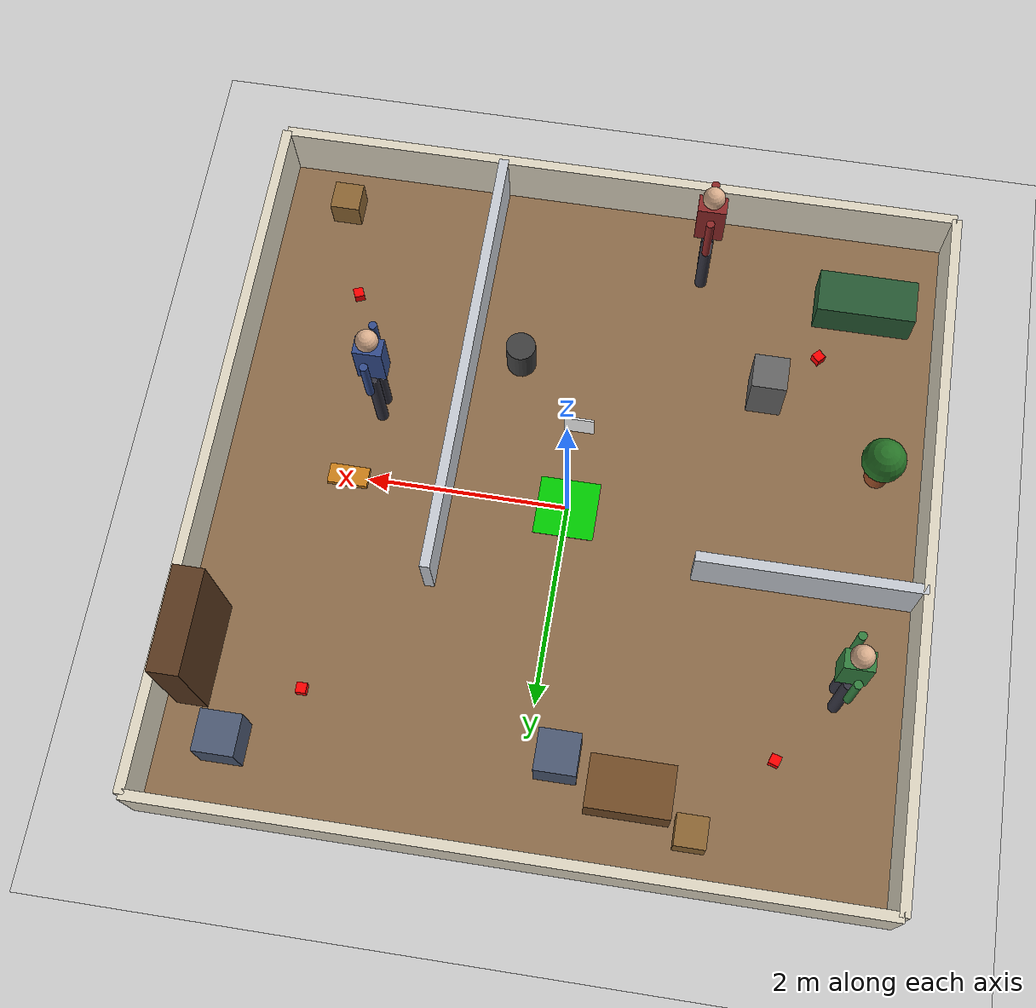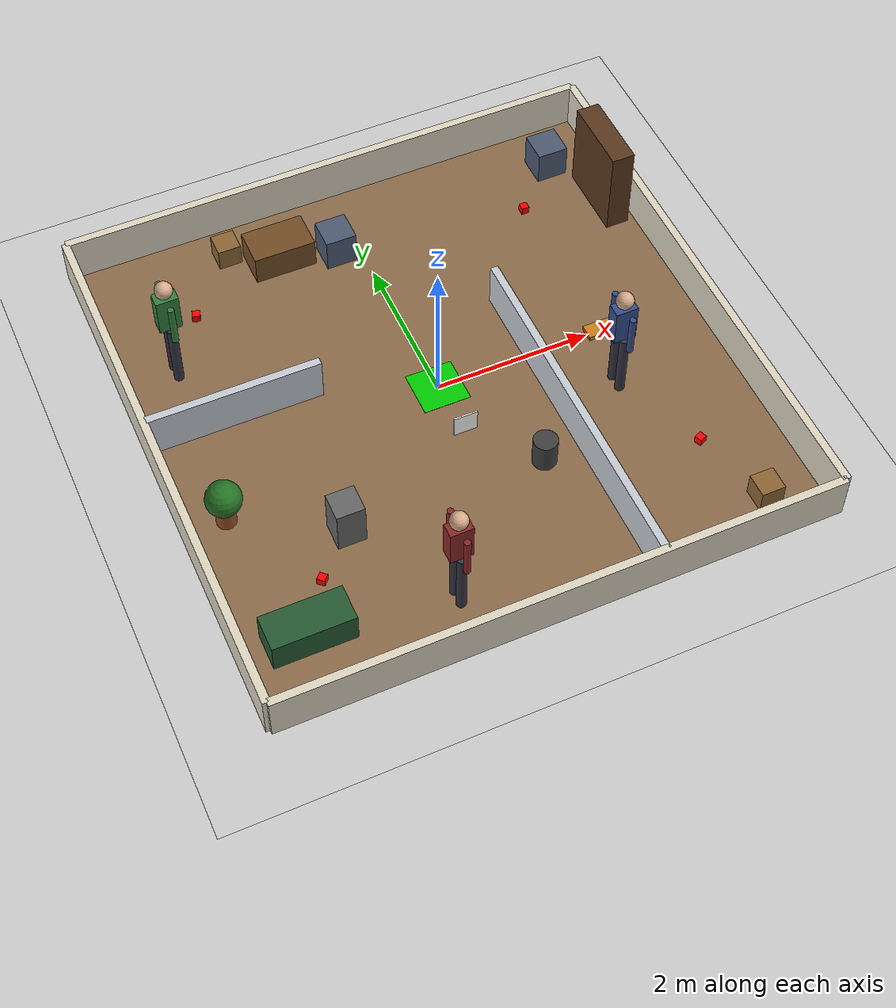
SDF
<?xml version="1.0" ?>
<sdf version="1.6">
  <world name="botzilla_world">
    <plugin filename="gz-sim-physics-system" name="gz::sim::systems::Physics">
    </plugin>
    <plugin filename="gz-sim-user-commands-system" name="gz::sim::systems::UserCommands">
    </plugin>
    <plugin filename="gz-sim-scene-broadcaster-system" name="gz::sim::systems::SceneBroadcaster">
    </plugin>
    <plugin filename="gz-sim-sensors-system" name="gz::sim::systems::Sensors">
      <render_engine>ogre2</render_engine>
    </plugin>

    <!-- Global light source using Fuel URI -->
    <include>
      <uri>https://fuel.gazebosim.org/1.0/OpenRobotics/models/Sun</uri>
    </include>
    <!-- Ground plane using Fuel URI -->
    <include>
      <uri>https://fuel.gazebosim.org/1.0/OpenRobotics/models/Ground Plane</uri>
    </include>

    <!-- Warm wood-tone floor finish overlay (visual only; Ground Plane above keeps the physics collision) -->
    <model name="floor_finish">
      <static>true</static>
      <pose>0 0 0.0008 0 0 0</pose>
      <link name="link">
        <visual name="visual">
          <geometry>
            <box>
              <size>7.0 7.0 0.001</size>
            </box>
          </geometry>
          <material>
            <ambient>0.55 0.42 0.29 1</ambient>
            <diffuse>0.55 0.42 0.29 1</diffuse>
          </material>
        </visual>
      </link>
    </model>

    <!-- Home / Drop-Off Zone at Origin (0.0, 0.0)                 -->
    <model name="drop_off_zone">
      <static>true</static>
      <pose>0.0 0.0 0.0025 0 0 0</pose>
      <link name="link">
        <visual name="visual">
          <geometry>
            <box>
              <size>0.6 0.6 0.005</size>
            </box>
          </geometry>
          <material>
            <ambient>0 0.8 0 1</ambient> <!-- Green home zone -->
          </material>
        </visual>
      </link>
    </model>

    <!-- AprilTag / Marker Panel behind home zone -->
    <model name="drop_off_wall_panel">
      <static>true</static>
      <pose>0.0 -0.8 0.25 0 0 0</pose>
      <link name="link">
        <visual name="visual">
          <geometry>
            <box>
              <size>0.3 0.02 0.3</size>
            </box>
          </geometry>
          <material>
            <ambient>1 1 1 1</ambient> <!-- White panel reference -->
          </material>
        </visual>
      </link>
    </model>

    <!-- N Collectible Target Cubes (N = 4)                        -->
    <!-- Scattered across different rooms to test frontier search  -->

    <!-- Cube 1: East Room (Upper) -->
    <model name="cube_1">
      <pose>2.2 2.2 0.05 0 0 0</pose>
      <link name="link">
        <inertial>
          <mass>0.05</mass>
          <inertia>
            <ixx>0.00008</ixx>
            <ixy>0</ixy>
            <ixz>0</ixz>
            <iyy>0.00008</iyy>
            <iyz>0</iyz>
            <izz>0.00008</izz>
          </inertia>
        </inertial>
        <collision name="collision">
          <geometry>
            <box>
              <size>0.1 0.1 0.1</size>
            </box>
          </geometry>
        </collision>
        <visual name="visual">
          <geometry>
            <box>
              <size>0.1 0.1 0.1</size>
            </box>
          </geometry>
          <material>
            <ambient>1 0 0 1</ambient> <!-- Red cube -->
            <diffuse>1 0 0 1</diffuse>
          </material>
        </visual>
      </link>
    </model>

    <!-- Cube 2: East Room (Lower behind central partition) -->
    <model name="cube_2">
      <pose>2.5 -2.0 0.05 0 0 0.4</pose>
      <link name="link">
        <inertial>
          <mass>0.05</mass>
          <inertia>
            <ixx>0.00008</ixx>
            <ixy>0</ixy>
            <ixz>0</ixz>
            <iyy>0.00008</iyy>
            <iyz>0</iyz>
            <izz>0.00008</izz>
          </inertia>
        </inertial>
        <collision name="collision">
          <geometry>
            <box>
              <size>0.1 0.1 0.1</size>
            </box>
          </geometry>
        </collision>
        <visual name="visual">
          <geometry>
            <box>
              <size>0.1 0.1 0.1</size>
            </box>
          </geometry>
          <material>
            <ambient>1 0 0 1</ambient>
            <diffuse>1 0 0 1</diffuse>
          </material>
        </visual>
      </link>
    </model>

    <!-- Cube 3: Northwest Room -->
    <model name="cube_3">
      <pose>-2.3 2.2 0.05 0 0 -0.3</pose>
      <link name="link">
        <inertial>
          <mass>0.05</mass>
          <inertia>
            <ixx>0.00008</ixx>
            <ixy>0</ixy>
            <ixz>0</ixz>
            <iyy>0.00008</iyy>
            <iyz>0</iyz>
            <izz>0.00008</izz>
          </inertia>
        </inertial>
        <collision name="collision">
          <geometry>
            <box>
              <size>0.1 0.1 0.1</size>
            </box>
          </geometry>
        </collision>
        <visual name="visual">
          <geometry>
            <box>
              <size>0.1 0.1 0.1</size>
            </box>
          </geometry>
          <material>
            <ambient>1 0 0 1</ambient>
            <diffuse>1 0 0 1</diffuse>
          </material>
        </visual>
      </link>
    </model>

    <!-- Cube 4: Southwest Room -->
    <model name="cube_4">
      <pose>-2.3 -2.0 0.05 0 0 0.8</pose>
      <link name="link">
        <inertial>
          <mass>0.05</mass>
          <inertia>
            <ixx>0.00008</ixx>
            <ixy>0</ixy>
            <ixz>0</ixz>
            <iyy>0.00008</iyy>
            <iyz>0</iyz>
            <izz>0.00008</izz>
          </inertia>
        </inertial>
        <collision name="collision">
          <geometry>
            <box>
              <size>0.1 0.1 0.1</size>
            </box>
          </geometry>
        </collision>
        <visual name="visual">
          <geometry>
            <box>
              <size>0.1 0.1 0.1</size>
            </box>
          </geometry>
          <material>
            <ambient>1 0 0 1</ambient>
            <diffuse>1 0 0 1</diffuse>
          </material>
        </visual>
      </link>
    </model>

    <!-- Multi-Height Obstacles (Testing Sensor Fusion)            -->

    <!-- Normal 2D LiDAR Pillar (Detected by LiDAR /scan at z=12cm) -->
    <model name="pillar_1">
      <static>true</static>
      <pose>-1.8 -1.5 0.3 0 0 0</pose>
      <link name="link">
        <collision name="collision">
          <geometry>
            <box>
              <size>0.35 0.35 0.6</size>
            </box>
          </geometry>
        </collision>
        <visual name="visual">
          <geometry>
            <box>
              <size>0.35 0.35 0.6</size>
            </box>
          </geometry>
          <material>
            <ambient>0.4 0.4 0.4 1</ambient>
          </material>
        </visual>
      </link>
    </model>

    <!-- Low Floor Barrier (Below LiDAR plane z=12cm; caught by Kinect 3D VoxelLayer) -->
    <model name="low_barrier_1">
      <static>true</static>
      <pose>2.2 0.0 0.03 0 0 0</pose>
      <link name="link">
        <collision name="collision">
          <geometry>
            <box>
              <size>0.4 0.2 0.06</size>
            </box>
          </geometry>
        </collision>
        <visual name="visual">
          <geometry>
            <box>
              <size>0.4 0.2 0.06</size>
            </box>
          </geometry>
          <material>
            <ambient>0.8 0.5 0.1 1</ambient> <!-- Orange low obstacle -->
          </material>
        </visual>
      </link>
    </model>

    <!-- Interior Partitions (Creating Occluded Rooms & Doorways)  -->

    <!-- Central Partition Wall (x = 1.2, from y = -3.5 to y = 1.0) -->
    <model name="partition_central">
      <static>true</static>
      <pose>1.2 -1.25 0.3 0 0 0</pose>
      <link name="link">
        <collision name="collision">
          <geometry>
            <box>
              <size>0.1 4.5 0.6</size>
            </box>
          </geometry>
        </collision>
        <visual name="visual">
          <geometry>
            <box>
              <size>0.1 4.5 0.6</size>
            </box>
          </geometry>
          <material>
            <ambient>0.78 0.80 0.83 1</ambient>
          </material>
        </visual>
      </link>
    </model>

    <!-- West Partition Wall (y = 0.5, from x = -3.5 to x = -1.3) -->
    <model name="partition_room_west">
      <static>true</static>
      <pose>-2.4 0.5 0.3 0 0 0</pose>
      <link name="link">
        <collision name="collision">
          <geometry>
            <box>
              <size>2.2 0.1 0.6</size>
            </box>
          </geometry>
        </collision>
        <visual name="visual">
          <geometry>
            <box>
              <size>2.2 0.1 0.6</size>
            </box>
          </geometry>
          <material>
            <ambient>0.78 0.80 0.83 1</ambient>
          </material>
        </visual>
      </link>
    </model>

    <!-- Room Furniture (visual/collision clutter for realism)     -->

    <!-- Table (north corridor, between the west and east rooms) -->
    <model name="table_1">
      <static>true</static>
      <pose>-1.0 2.7 0.2 0 0 0</pose>
      <link name="link">
        <collision name="collision">
          <geometry>
            <box>
              <size>0.8 0.5 0.4</size>
            </box>
          </geometry>
        </collision>
        <visual name="visual">
          <geometry>
            <box>
              <size>0.8 0.5 0.4</size>
            </box>
          </geometry>
          <material>
            <ambient>0.45 0.3 0.15 1</ambient>
            <diffuse>0.45 0.3 0.15 1</diffuse>
          </material>
        </visual>
      </link>
    </model>

    <!-- Bookshelf against the east wall (east room) -->
    <model name="shelf_1">
      <static>true</static>
      <pose>3.2 2.0 0.6 0 0 0</pose>
      <link name="link">
        <collision name="collision">
          <geometry>
            <box>
              <size>0.3 1.0 1.2</size>
            </box>
          </geometry>
        </collision>
        <visual name="visual">
          <geometry>
            <box>
              <size>0.3 1.0 1.2</size>
            </box>
          </geometry>
          <material>
            <ambient>0.35 0.22 0.12 1</ambient>
            <diffuse>0.35 0.22 0.12 1</diffuse>
          </material>
        </visual>
      </link>
    </model>

    <!-- Static Human Figures (simplified torso+head mannequins)   -->
    <!-- Sensor-fusion test targets, one per room                  -->

    <!-- Human 1: East room -->
    <model name="human_1">
      <static>true</static>
      <pose>2.0 -0.8 0 0 0 0</pose>
      <link name="link">
        <collision name="leg_left_collision">
          <pose>0 0.09 0.45 0 0 0</pose>
          <geometry><cylinder><radius>0.06</radius><length>0.9</length></cylinder></geometry>
        </collision>
        <visual name="leg_left_visual">
          <pose>0 0.09 0.45 0 0 0</pose>
          <geometry><cylinder><radius>0.06</radius><length>0.9</length></cylinder></geometry>
          <material><ambient>0.2 0.2 0.25 1</ambient><diffuse>0.2 0.2 0.25 1</diffuse></material>
        </visual>
        <collision name="leg_right_collision">
          <pose>0 -0.09 0.45 0 0 0</pose>
          <geometry><cylinder><radius>0.06</radius><length>0.9</length></cylinder></geometry>
        </collision>
        <visual name="leg_right_visual">
          <pose>0 -0.09 0.45 0 0 0</pose>
          <geometry><cylinder><radius>0.06</radius><length>0.9</length></cylinder></geometry>
          <material><ambient>0.2 0.2 0.25 1</ambient><diffuse>0.2 0.2 0.25 1</diffuse></material>
        </visual>
        <collision name="torso_collision">
          <pose>0 0 1.15 0 0 0</pose>
          <geometry><box><size>0.28 0.18 0.5</size></box></geometry>
        </collision>
        <visual name="torso_visual">
          <pose>0 0 1.15 0 0 0</pose>
          <geometry><box><size>0.28 0.18 0.5</size></box></geometry>
          <material><ambient>0.2 0.3 0.55 1</ambient><diffuse>0.2 0.3 0.55 1</diffuse></material>
        </visual>
        <collision name="arm_left_collision">
          <pose>0 0.22 1.125 0 0 0</pose>
          <geometry><cylinder><radius>0.04</radius><length>0.55</length></cylinder></geometry>
        </collision>
        <visual name="arm_left_visual">
          <pose>0 0.22 1.125 0 0 0</pose>
          <geometry><cylinder><radius>0.04</radius><length>0.55</length></cylinder></geometry>
          <material><ambient>0.2 0.3 0.55 1</ambient><diffuse>0.2 0.3 0.55 1</diffuse></material>
        </visual>
        <collision name="arm_right_collision">
          <pose>0 -0.22 1.125 0 0 0</pose>
          <geometry><cylinder><radius>0.04</radius><length>0.55</length></cylinder></geometry>
        </collision>
        <visual name="arm_right_visual">
          <pose>0 -0.22 1.125 0 0 0</pose>
          <geometry><cylinder><radius>0.04</radius><length>0.55</length></cylinder></geometry>
          <material><ambient>0.2 0.3 0.55 1</ambient><diffuse>0.2 0.3 0.55 1</diffuse></material>
        </visual>
        <collision name="head_collision">
          <pose>0 0 1.51 0 0 0</pose>
          <geometry><sphere><radius>0.11</radius></sphere></geometry>
        </collision>
        <visual name="head_visual">
          <pose>0 0 1.51 0 0 0</pose>
          <geometry><sphere><radius>0.11</radius></sphere></geometry>
          <material><ambient>0.85 0.68 0.55 1</ambient><diffuse>0.85 0.68 0.55 1</diffuse></material>
        </visual>
      </link>
    </model>

    <!-- Human 2: South-center area -->
    <model name="human_2">
      <static>true</static>
      <pose>-1.0 -2.8 0 0 0 0</pose>
      <link name="link">
        <collision name="leg_left_collision">
          <pose>0 0.09 0.45 0 0 0</pose>
          <geometry><cylinder><radius>0.06</radius><length>0.9</length></cylinder></geometry>
        </collision>
        <visual name="leg_left_visual">
          <pose>0 0.09 0.45 0 0 0</pose>
          <geometry><cylinder><radius>0.06</radius><length>0.9</length></cylinder></geometry>
          <material><ambient>0.2 0.2 0.25 1</ambient><diffuse>0.2 0.2 0.25 1</diffuse></material>
        </visual>
        <collision name="leg_right_collision">
          <pose>0 -0.09 0.45 0 0 0</pose>
          <geometry><cylinder><radius>0.06</radius><length>0.9</length></cylinder></geometry>
        </collision>
        <visual name="leg_right_visual">
          <pose>0 -0.09 0.45 0 0 0</pose>
          <geometry><cylinder><radius>0.06</radius><length>0.9</length></cylinder></geometry>
          <material><ambient>0.2 0.2 0.25 1</ambient><diffuse>0.2 0.2 0.25 1</diffuse></material>
        </visual>
        <collision name="torso_collision">
          <pose>0 0 1.15 0 0 0</pose>
          <geometry><box><size>0.28 0.18 0.5</size></box></geometry>
        </collision>
        <visual name="torso_visual">
          <pose>0 0 1.15 0 0 0</pose>
          <geometry><box><size>0.28 0.18 0.5</size></box></geometry>
          <material><ambient>0.55 0.15 0.15 1</ambient><diffuse>0.55 0.15 0.15 1</diffuse></material>
        </visual>
        <collision name="arm_left_collision">
          <pose>0 0.22 1.125 0 0 0</pose>
          <geometry><cylinder><radius>0.04</radius><length>0.55</length></cylinder></geometry>
        </collision>
        <visual name="arm_left_visual">
          <pose>0 0.22 1.125 0 0 0</pose>
          <geometry><cylinder><radius>0.04</radius><length>0.55</length></cylinder></geometry>
          <material><ambient>0.55 0.15 0.15 1</ambient><diffuse>0.55 0.15 0.15 1</diffuse></material>
        </visual>
        <collision name="arm_right_collision">
          <pose>0 -0.22 1.125 0 0 0</pose>
          <geometry><cylinder><radius>0.04</radius><length>0.55</length></cylinder></geometry>
        </collision>
        <visual name="arm_right_visual">
          <pose>0 -0.22 1.125 0 0 0</pose>
          <geometry><cylinder><radius>0.04</radius><length>0.55</length></cylinder></geometry>
          <material><ambient>0.55 0.15 0.15 1</ambient><diffuse>0.55 0.15 0.15 1</diffuse></material>
        </visual>
        <collision name="head_collision">
          <pose>0 0 1.51 0 0 0</pose>
          <geometry><sphere><radius>0.11</radius></sphere></geometry>
        </collision>
        <visual name="head_visual">
          <pose>0 0 1.51 0 0 0</pose>
          <geometry><sphere><radius>0.11</radius></sphere></geometry>
          <material><ambient>0.85 0.68 0.55 1</ambient><diffuse>0.85 0.68 0.55 1</diffuse></material>
        </visual>
      </link>
    </model>

    <!-- Human 3: Northwest room -->
    <model name="human_3">
      <static>true</static>
      <pose>-2.8 1.5 0 0 0 0</pose>
      <link name="link">
        <collision name="leg_left_collision">
          <pose>0 0.09 0.45 0 0 0</pose>
          <geometry><cylinder><radius>0.06</radius><length>0.9</length></cylinder></geometry>
        </collision>
        <visual name="leg_left_visual">
          <pose>0 0.09 0.45 0 0 0</pose>
          <geometry><cylinder><radius>0.06</radius><length>0.9</length></cylinder></geometry>
          <material><ambient>0.2 0.2 0.25 1</ambient><diffuse>0.2 0.2 0.25 1</diffuse></material>
        </visual>
        <collision name="leg_right_collision">
          <pose>0 -0.09 0.45 0 0 0</pose>
          <geometry><cylinder><radius>0.06</radius><length>0.9</length></cylinder></geometry>
        </collision>
        <visual name="leg_right_visual">
          <pose>0 -0.09 0.45 0 0 0</pose>
          <geometry><cylinder><radius>0.06</radius><length>0.9</length></cylinder></geometry>
          <material><ambient>0.2 0.2 0.25 1</ambient><diffuse>0.2 0.2 0.25 1</diffuse></material>
        </visual>
        <collision name="torso_collision">
          <pose>0 0 1.15 0 0 0</pose>
          <geometry><box><size>0.28 0.18 0.5</size></box></geometry>
        </collision>
        <visual name="torso_visual">
          <pose>0 0 1.15 0 0 0</pose>
          <geometry><box><size>0.28 0.18 0.5</size></box></geometry>
          <material><ambient>0.2 0.5 0.25 1</ambient><diffuse>0.2 0.5 0.25 1</diffuse></material>
        </visual>
        <collision name="arm_left_collision">
          <pose>0 0.22 1.125 0 0 0</pose>
          <geometry><cylinder><radius>0.04</radius><length>0.55</length></cylinder></geometry>
        </collision>
        <visual name="arm_left_visual">
          <pose>0 0.22 1.125 0 0 0</pose>
          <geometry><cylinder><radius>0.04</radius><length>0.55</length></cylinder></geometry>
          <material><ambient>0.2 0.5 0.25 1</ambient><diffuse>0.2 0.5 0.25 1</diffuse></material>
        </visual>
        <collision name="arm_right_collision">
          <pose>0 -0.22 1.125 0 0 0</pose>
          <geometry><cylinder><radius>0.04</radius><length>0.55</length></cylinder></geometry>
        </collision>
        <visual name="arm_right_visual">
          <pose>0 -0.22 1.125 0 0 0</pose>
          <geometry><cylinder><radius>0.04</radius><length>0.55</length></cylinder></geometry>
          <material><ambient>0.2 0.5 0.25 1</ambient><diffuse>0.2 0.5 0.25 1</diffuse></material>
        </visual>
        <collision name="head_collision">
          <pose>0 0 1.51 0 0 0</pose>
          <geometry><sphere><radius>0.11</radius></sphere></geometry>
        </collision>
        <visual name="head_visual">
          <pose>0 0 1.51 0 0 0</pose>
          <geometry><sphere><radius>0.11</radius></sphere></geometry>
          <material><ambient>0.85 0.68 0.55 1</ambient><diffuse>0.85 0.68 0.55 1</diffuse></material>
        </visual>
      </link>
    </model>

    <!-- Additional Indoor Clutter (chairs, sofa, plant, bin, crates) -->

    <!-- Chair near shelf (east room) -->
    <model name="chair_1">
      <static>true</static>
      <pose>2.8 2.8 0.225 0 0 0</pose>
      <link name="link">
        <collision name="collision">
          <geometry><box><size>0.4 0.4 0.45</size></box></geometry>
        </collision>
        <visual name="visual">
          <geometry><box><size>0.4 0.4 0.45</size></box></geometry>
          <material><ambient>0.3 0.35 0.45 1</ambient><diffuse>0.3 0.35 0.45 1</diffuse></material>
        </visual>
      </link>
    </model>

    <!-- Chair near table (center corridor) -->
    <model name="chair_2">
      <static>true</static>
      <pose>-0.3 2.5 0.225 0 0 0</pose>
      <link name="link">
        <collision name="collision">
          <geometry><box><size>0.4 0.4 0.45</size></box></geometry>
        </collision>
        <visual name="visual">
          <geometry><box><size>0.4 0.4 0.45</size></box></geometry>
          <material><ambient>0.3 0.35 0.45 1</ambient><diffuse>0.3 0.35 0.45 1</diffuse></material>
        </visual>
      </link>
    </model>

    <!-- Sofa (southwest room) -->
    <model name="sofa_1">
      <static>true</static>
      <pose>-2.7 -2.6 0.2 0 0 0</pose>
      <link name="link">
        <collision name="collision">
          <geometry><box><size>1.0 0.45 0.4</size></box></geometry>
        </collision>
        <visual name="visual">
          <geometry><box><size>1.0 0.45 0.4</size></box></geometry>
          <material><ambient>0.15 0.35 0.2 1</ambient><diffuse>0.15 0.35 0.2 1</diffuse></material>
        </visual>
      </link>
    </model>

    <!-- Potted plant (southwest room) -->
    <model name="plant_1">
      <static>true</static>
      <pose>-3.0 -0.8 0 0 0 0</pose>
      <link name="link">
        <collision name="pot_collision">
          <pose>0 0 0.125 0 0 0</pose>
          <geometry><cylinder><radius>0.12</radius><length>0.25</length></cylinder></geometry>
        </collision>
        <visual name="pot_visual">
          <pose>0 0 0.125 0 0 0</pose>
          <geometry><cylinder><radius>0.12</radius><length>0.25</length></cylinder></geometry>
          <material><ambient>0.6 0.3 0.15 1</ambient><diffuse>0.6 0.3 0.15 1</diffuse></material>
        </visual>
        <collision name="foliage_collision">
          <pose>0 0 0.45 0 0 0</pose>
          <geometry><sphere><radius>0.22</radius></sphere></geometry>
        </collision>
        <visual name="foliage_visual">
          <pose>0 0 0.45 0 0 0</pose>
          <geometry><sphere><radius>0.22</radius></sphere></geometry>
          <material><ambient>0.15 0.45 0.15 1</ambient><diffuse>0.15 0.45 0.15 1</diffuse></material>
        </visual>
      </link>
    </model>

    <!-- Trash bin (center corridor) -->
    <model name="trash_bin_1">
      <static>true</static>
      <pose>0.7 -1.5 0.2 0 0 0</pose>
      <link name="link">
        <collision name="collision">
          <geometry><cylinder><radius>0.15</radius><length>0.4</length></cylinder></geometry>
        </collision>
        <visual name="visual">
          <geometry><cylinder><radius>0.15</radius><length>0.4</length></cylinder></geometry>
          <material><ambient>0.25 0.25 0.25 1</ambient><diffuse>0.25 0.25 0.25 1</diffuse></material>
        </visual>
      </link>
    </model>

    <!-- Debris crate (east room) -->
    <model name="crate_1">
      <static>true</static>
      <pose>2.8 -3.0 0.15 0 0 0</pose>
      <link name="link">
        <collision name="collision">
          <geometry><box><size>0.3 0.3 0.3</size></box></geometry>
        </collision>
        <visual name="visual">
          <geometry><box><size>0.3 0.3 0.3</size></box></geometry>
          <material><ambient>0.55 0.4 0.2 1</ambient><diffuse>0.55 0.4 0.2 1</diffuse></material>
        </visual>
      </link>
    </model>

    <!-- Debris crate (northwest room) -->
    <model name="crate_2">
      <static>true</static>
      <pose>-1.6 3.0 0.15 0 0 0</pose>
      <link name="link">
        <collision name="collision">
          <geometry><box><size>0.3 0.3 0.3</size></box></geometry>
        </collision>
        <visual name="visual">
          <geometry><box><size>0.3 0.3 0.3</size></box></geometry>
          <material><ambient>0.55 0.4 0.2 1</ambient><diffuse>0.55 0.4 0.2 1</diffuse></material>
        </visual>
      </link>
    </model>

    <!-- Outer Arena Perimeter Walls (7.0m x 7.0m)                 -->

    <!-- North Wall -->
    <model name="wall_north">
      <static>true</static>
      <pose>0 3.5 0.3 0 0 0</pose>
      <link name="link">
        <collision name="collision">
          <geometry><box><size>7.0 0.1 0.6</size></box></geometry>
        </collision>
        <visual name="visual">
          <geometry><box><size>7.0 0.1 0.6</size></box></geometry>
          <material><ambient>0.87 0.84 0.76 1</ambient></material>
        </visual>
      </link>
    </model>

    <!-- South Wall -->
    <model name="wall_south">
      <static>true</static>
      <pose>0 -3.5 0.3 0 0 0</pose>
      <link name="link">
        <collision name="collision">
          <geometry><box><size>7.0 0.1 0.6</size></box></geometry>
        </collision>
        <visual name="visual">
          <geometry><box><size>7.0 0.1 0.6</size></box></geometry>
          <material><ambient>0.87 0.84 0.76 1</ambient></material>
        </visual>
      </link>
    </model>

    <!-- East Wall -->
    <model name="wall_east">
      <static>true</static>
      <pose>3.5 0 0.3 0 0 0</pose>
      <link name="link">
        <collision name="collision">
          <geometry><box><size>0.1 7.0 0.6</size></box></geometry>
        </collision>
        <visual name="visual">
          <geometry><box><size>0.1 7.0 0.6</size></box></geometry>
          <material><ambient>0.87 0.84 0.76 1</ambient></material>
        </visual>
      </link>
    </model>

    <!-- West Wall -->
    <model name="wall_west">
      <static>true</static>
      <pose>-3.5 0 0.3 0 0 0</pose>
      <link name="link">
        <collision name="collision">
          <geometry><box><size>0.1 7.0 0.6</size></box></geometry>
        </collision>
        <visual name="visual">
          <geometry><box><size>0.1 7.0 0.6</size></box></geometry>
          <material><ambient>0.87 0.84 0.76 1</ambient></material>
        </visual>
      </link>
    </model>

    <!-- Physics settings for high-precision differential drive & capture -->
    <physics type="ode">
      <real_time_update_rate>1000.0</real_time_update_rate>
      <max_step_size>0.001</max_step_size>
    </physics>
  </world>
</sdf>
